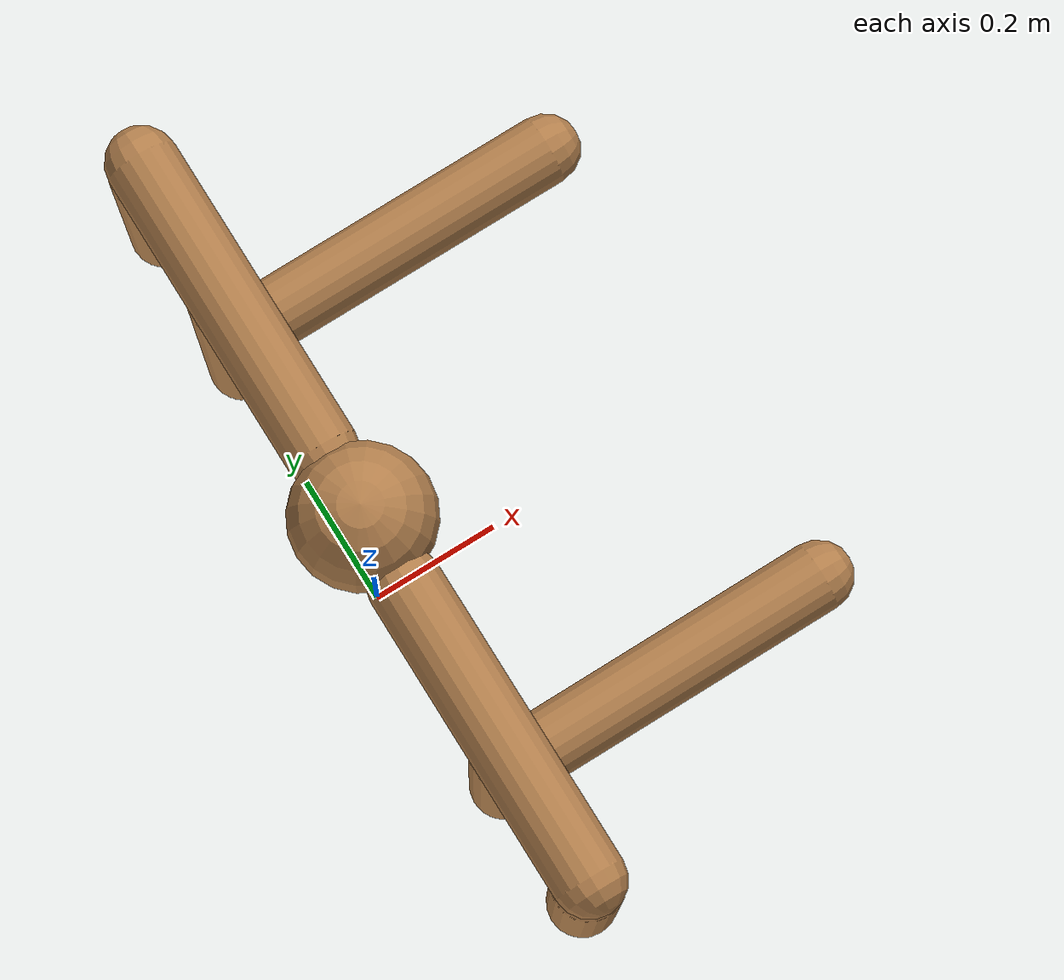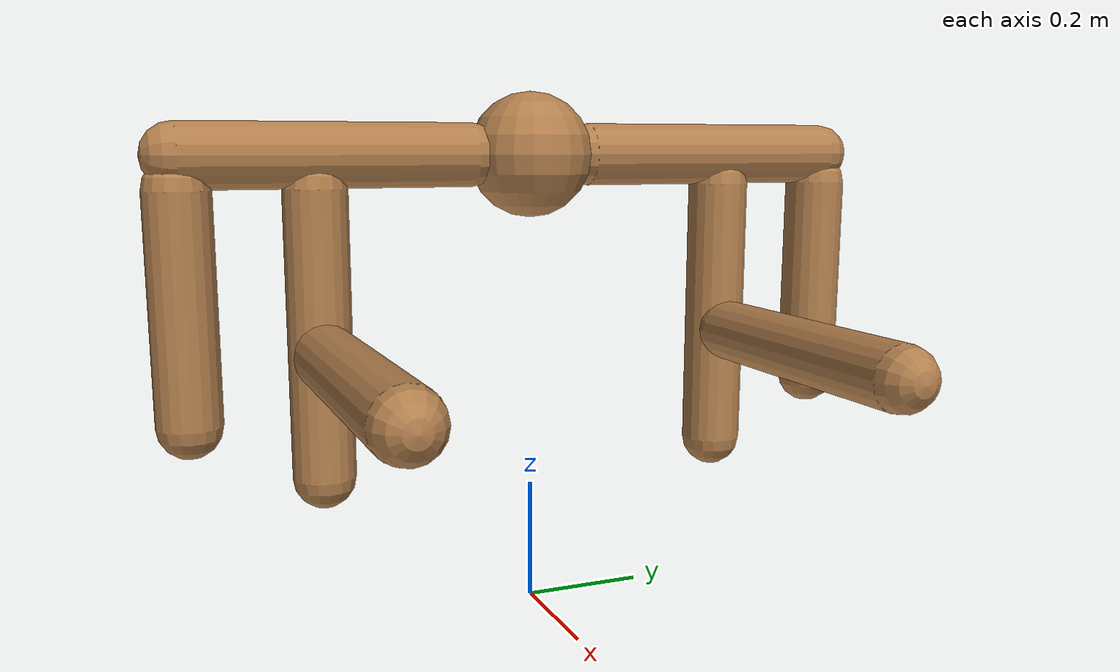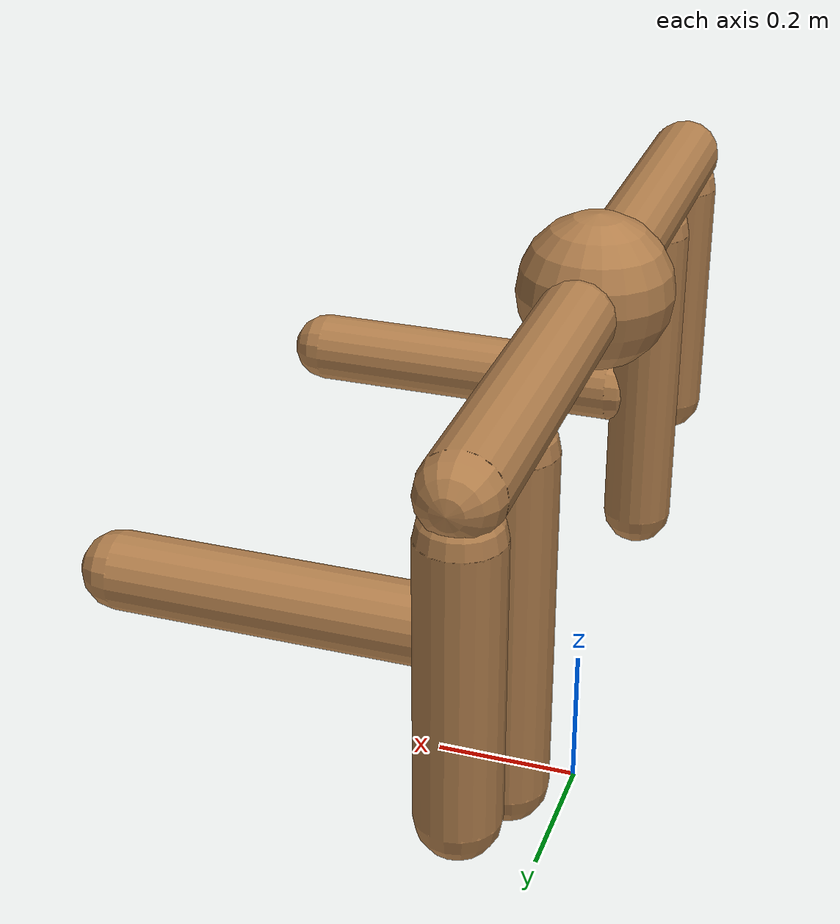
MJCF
<?xml version='1.0' encoding='UTF-8'?>
<!-- Universal Animal Template: unimal -->
<mujoco model="unimal">
  <compiler angle="degree"/>
  <size njmax="2000" nconmax="500"/>
  <option timestep=".005">
    <flag filterparent="disable"/>
  </option>
  <!-- Common defaults to make search space tractable -->
  <default>
    <!-- Define motor defaults -->
    <motor ctrlrange="-1 1" ctrllimited="true"/>
    <!-- Define joint defaults -->
    <default class="normal_joint">
      <joint type="hinge" damping="1" stiffness="1" armature="1" limited="true" range="-120 120" solimplimit="0 0.99 0.01"/>
    </default>
    <default class="walker_joint">
      <joint type="hinge" damping="0.2" stiffness="1" armature=".01" limited="true" range="-120 120" solimplimit="0 0.99 0.01"/>
    </default>
    <default class="stiff_joint">
      <joint type="hinge" damping="5" stiffness="10" armature=".01" limited="true" solimplimit="0 0.99 0.01"/>
    </default>
    <default class="free">
      <joint limited="false" damping="0" armature="0" stiffness="0"/>
    </default>
    <default class="growth_site">
      <site size="1e-6 1e-6 1e-6"/>
    </default>
    <default class="torso_growth_site">
      <site size="1e-6 1e-6 1e-6"/>
    </default>
    <default class="mirror_growth_site">
      <site size="1e-6 1e-6 1e-6"/>
    </default>
    <default class="btm_pos_site">
      <site size="1e-6 1e-6 1e-6"/>
    </default>
    <default class="box_face_site">
      <site size="1e-6 1e-6 1e-6"/>
    </default>
    <default class="imu_vel">
      <site type="box" size="0.05" rgba="1 0 0 0"/>
    </default>
    <default class="touch_site">
      <site group="3" rgba="0 0 1 .3"/>
    </default>
    <default class="food_site">
      <site material="food" size="0.15"/>
    </default>
    <!-- Define geom defaults -->
    <geom type="capsule" condim="3" friction="0.7 0.1 0.1" material="self"/>
  </default>
  <worldbody>
    <light diffuse="1 1 1" directional="true" exponent="1" pos="0 0 8" specular="0.1 0.1 0.1" dir="0 0 -1"/>
    <!-- Programatically generated xml goes here -->
    <body name="torso/0" pos="0 0 0.75">
      <joint name="root" type="free" class="free"/>
      <site name="root" class="imu_vel"/>
      <geom name="torso/0" type="sphere" size="0.1" condim="3" density="600"/>
      <camera name="side" pos="0 -7 2" xyaxes="1 0 0 0 1 2" mode="trackcom"/>
      <site name="torso/0" class="growth_site" pos="0 0 0"/>
      <site name="torso/btm_pos/0" class="btm_pos_site" pos="0 0 -0.1"/>
      <site name="torso/touch/0" class="touch_site" size="0.11"/>
      <site name="torso/horizontal_y/0" class="torso_growth_site" pos="-0.1 0 0"/>
      <body name="limb/3" pos="0.0 0.1 0.0">
        <joint name="limbx/3" type="hinge" class="normal_joint" range="-60 0" pos="0.0 -0.05 0.0" axis="1.0 0.0 0.0"/>
        <geom name="limb/3" type="capsule" fromto="0.0 0.0 0.0 0.0 0.45 0.0" size="0.05" density="500"/>
        <site name="limb/mid/3" class="mirror_growth_site" pos="0.0 0.25 0.0"/>
        <site name="limb/btm/3" class="mirror_growth_site" pos="0.0 0.45 0.0"/>
        <site name="limb/btm_pos/3" class="btm_pos_site" pos="0.0 0.45 0.0"/>
        <site name="limb/touch/3" class="touch_site" size="0.060000000000000005" fromto="0.0 0.0 0.0 0.0 0.45 0.0" type="capsule"/>
        <body name="limb/24" pos="0.0 0.45 -0.05">
          <joint name="limby/24" type="hinge" class="normal_joint" range="0 30" pos="0.0 0.0 0.05" axis="0.0 1.0 0.0"/>
          <geom name="limb/24" type="capsule" fromto="0.0 0.0 0.0 0.0 0.0 -0.35" size="0.05" density="500"/>
          <site name="limb/mid/24" class="mirror_growth_site" pos="0.0 0.0 -0.2"/>
          <site name="limb/btm/24" class="mirror_growth_site" pos="0.0 0.0 -0.35"/>
          <site name="limb/btm_pos/24" class="btm_pos_site" pos="0.0 0.0 -0.4"/>
          <site name="limb/touch/24" class="touch_site" size="0.060000000000000005" fromto="0.0 0.0 0.0 0.0 0.0 -0.35" type="capsule"/>
        </body>
        <body name="limb/26" pos="0.0 0.25 -0.05">
          <joint name="limbx/26" type="hinge" class="normal_joint" range="-45 0" pos="0.0 0.0 0.05" axis="1.0 0.0 0.0"/>
          <geom name="limb/26" type="capsule" fromto="0.0 0.0 0.0 0.0 0.0 -0.45" size="0.05" density="500"/>
          <site name="limb/mid/26" class="mirror_growth_site" pos="0.0 0.0 -0.25"/>
          <site name="limb/btm/26" class="mirror_growth_site" pos="0.0 0.0 -0.45"/>
          <site name="limb/btm_pos/26" class="btm_pos_site" pos="0.0 0.0 -0.5"/>
          <site name="limb/touch/26" class="touch_site" size="0.060000000000000005" fromto="0.0 0.0 0.0 0.0 0.0 -0.45" type="capsule"/>
          <body name="limb/28" pos="0.05 0.0 -0.25">
            <joint name="limby/28" type="hinge" class="normal_joint" range="-60 0" pos="-0.05 0.0 0.0" axis="-0.0 1.0 0.0"/>
            <geom name="limb/28" type="capsule" fromto="0.0 0.0 0.0 0.45 0.0 0.0" size="0.05" density="500"/>
            <site name="limb/mid/28" class="mirror_growth_site" pos="0.25 0.0 0.0"/>
            <site name="limb/btm/28" class="mirror_growth_site" pos="0.45 0.0 0.0"/>
            <site name="limb/btm_pos/28" class="btm_pos_site" pos="0.5 0.0 0.0"/>
            <site name="limb/touch/28" class="touch_site" size="0.060000000000000005" fromto="0.0 0.0 0.0 0.45 0.0 0.0" type="capsule"/>
          </body>
        </body>
      </body>
      <body name="limb/4" pos="0.0 -0.1 0.0">
        <joint name="limbx/4" type="hinge" class="normal_joint" range="-60 0" pos="0.0 0.05 0.0" axis="1.0 0.0 -0.0"/>
        <geom name="limb/4" type="capsule" fromto="0.0 0.0 0.0 0.0 -0.45 0.0" size="0.05" density="500"/>
        <site name="limb/mid/4" class="mirror_growth_site" pos="0.0 -0.25 0.0"/>
        <site name="limb/btm/4" class="mirror_growth_site" pos="0.0 -0.45 0.0"/>
        <site name="limb/btm_pos/4" class="btm_pos_site" pos="0.0 -0.45 0.0"/>
        <site name="limb/touch/4" class="touch_site" size="0.060000000000000005" fromto="0.0 0.0 0.0 0.0 -0.45 0.0" type="capsule"/>
        <body name="limb/25" pos="0.0 -0.45 -0.05">
          <joint name="limby/25" type="hinge" class="normal_joint" range="0 30" pos="0.0 0.0 0.05" axis="0.0 1.0 0.0"/>
          <geom name="limb/25" type="capsule" fromto="0.0 0.0 0.0 0.0 0.0 -0.35" size="0.05" density="500"/>
          <site name="limb/mid/25" class="mirror_growth_site" pos="0.0 0.0 -0.2"/>
          <site name="limb/btm/25" class="mirror_growth_site" pos="0.0 0.0 -0.35"/>
          <site name="limb/btm_pos/25" class="btm_pos_site" pos="0.0 0.0 -0.4"/>
          <site name="limb/touch/25" class="touch_site" size="0.060000000000000005" fromto="0.0 0.0 0.0 0.0 0.0 -0.35" type="capsule"/>
        </body>
        <body name="limb/27" pos="0.0 -0.25 -0.05">
          <joint name="limbx/27" type="hinge" class="normal_joint" range="-45 0" pos="0.0 0.0 0.05" axis="1.0 0.0 0.0"/>
          <geom name="limb/27" type="capsule" fromto="0.0 0.0 0.0 0.0 0.0 -0.45" size="0.05" density="500"/>
          <site name="limb/mid/27" class="mirror_growth_site" pos="0.0 0.0 -0.25"/>
          <site name="limb/btm/27" class="mirror_growth_site" pos="0.0 0.0 -0.45"/>
          <site name="limb/btm_pos/27" class="btm_pos_site" pos="0.0 0.0 -0.5"/>
          <site name="limb/touch/27" class="touch_site" size="0.060000000000000005" fromto="0.0 0.0 0.0 0.0 0.0 -0.45" type="capsule"/>
          <body name="limb/29" pos="0.05 0.0 -0.25">
            <joint name="limby/29" type="hinge" class="normal_joint" range="-60 0" pos="-0.05 0.0 0.0" axis="-0.0 1.0 0.0"/>
            <geom name="limb/29" type="capsule" fromto="0.0 0.0 0.0 0.45 0.0 0.0" size="0.05" density="500"/>
            <site name="limb/mid/29" class="mirror_growth_site" pos="0.25 0.0 0.0"/>
            <site name="limb/btm/29" class="mirror_growth_site" pos="0.45 0.0 0.0"/>
            <site name="limb/btm_pos/29" class="btm_pos_site" pos="0.5 0.0 0.0"/>
            <site name="limb/touch/29" class="touch_site" size="0.060000000000000005" fromto="0.0 0.0 0.0 0.45 0.0 0.0" type="capsule"/>
          </body>
        </body>
      </body>
    </body>
  </worldbody>
  <actuator>
    <motor joint="limbx/3" gear="200" name="limbx/3"/>
    <motor joint="limby/24" gear="150" name="limby/24"/>
    <motor joint="limbx/26" gear="250" name="limbx/26"/>
    <motor joint="limby/28" gear="150" name="limby/28"/>
    <motor joint="limbx/4" gear="200" name="limbx/4"/>
    <motor joint="limby/25" gear="150" name="limby/25"/>
    <motor joint="limbx/27" gear="250" name="limbx/27"/>
    <motor joint="limby/29" gear="150" name="limby/29"/>
  </actuator>
  <sensor>
    <accelerometer name="torso_accel" site="root"/>
    <gyro name="torso_gyro" site="root"/>
    <velocimeter name="torso_vel" site="root"/>
    <subtreeangmom name="unimal_am" body="torso/0"/>
    <touch name="torso/0" site="torso/touch/0"/>
    <touch name="limb/3" site="limb/touch/3"/>
    <touch name="limb/24" site="limb/touch/24"/>
    <touch name="limb/26" site="limb/touch/26"/>
    <touch name="limb/28" site="limb/touch/28"/>
    <touch name="limb/4" site="limb/touch/4"/>
    <touch name="limb/25" site="limb/touch/25"/>
    <touch name="limb/27" site="limb/touch/27"/>
    <touch name="limb/29" site="limb/touch/29"/>
  </sensor>
  <!-- Add hfield assets -->
  <asset/>
  <!-- List of contacts to exclude -->
  <contact/>
  <!-- Define material, texture etc -->
  <asset>
    <material name="grid" texture="grid" texrepeat="1 1" texuniform="true" reflectance="0.1"/>
    <material name="hfield" texture="hfield" texrepeat="1 1" texuniform="true" reflectance="0.1"/>
    <material name="wall" texture="wall" texrepeat="1 1" texuniform="true" reflectance=".5"/>
    <material name="platform" texture="platform" texrepeat="1 1" texuniform="true" reflectance=".5"/>
    <material name="boundary" texture="boundary" texrepeat="1 1" texuniform="true" reflectance=".5"/>
    <material name="jump" texture="jump" texrepeat="1 1" texuniform="true" reflectance=".5"/>
    <material name="goal" rgba="1 0 0 1"/>
    <material name="food" rgba="0 0 1 1" emission="1"/>
    <material name="init_position" rgba="0 1 0 0.7"/>
    <material name="self" rgba=".7 .5 .3 1"/>
    <material name="self_invisible" rgba=".7 .5 .3 0"/>
    <material name="self_default" rgba=".7 .5 .3 1"/>
    <material name="self_highlight" rgba="0 .5 .3 1"/>
    <material name="effector" rgba=".7 .4 .2 1"/>
    <material name="effector_default" rgba=".7 .4 .2 1"/>
    <material name="effector_highlight" rgba="0 .5 .3 1"/>
    <material name="decoration" rgba=".3 .5 .7 1"/>
    <material name="eye" rgba="0 .2 1 1"/>
    <material name="target" rgba=".6 .3 .3 1"/>
    <material name="target_default" rgba=".6 .3 .3 1"/>
    <material name="target_highlight" rgba=".6 .3 .3 .4"/>
    <material name="site" rgba=".5 .5 .5 .3"/>
    <material name="ball" texture="ball"/>
  </asset>
  <asset>
    <texture name="grid" type="2d" builtin="checker" rgb1="0.4 0.4 0.4" rgb2="0.4 0.4 0.4" width="300" height="300" mark="edge" markrgb="0.2 0.2 0.2"/>
    <texture name="hfield" type="2d" builtin="checker" rgb1="0.4 0.4 0.4" rgb2="0.4 0.4 0.4" width="300" height="300" mark="edge" markrgb="0.2 0.2 0.2"/>
    <texture name="wall" type="2d" builtin="flat" rgb1="0.9 0.7 0" rgb2="0.9 0.7 0" width="300" height="300"/>
    <texture name="platform" type="2d" builtin="flat" rgb1="0.3 0 0.8" rgb2="0.3 0 0.8" width="300" height="300"/>
    <texture name="boundary" type="2d" builtin="flat" rgb1="0.3 0.3 0.3" rgb2="0.3 0.3 0.3" width="300" height="300"/>
    <texture name="jump" type="2d" builtin="flat" rgb1="0.3 0.3 0.3" rgb2="0.3 0.3 0.3" width="300" height="300"/>
    <texture name="skybox" type="skybox" builtin="gradient" rgb1="1 1 1" rgb2="0.6 0.6 0.6" width="800" height="800"/>
    <texture name="ball" builtin="checker" mark="cross" width="151" height="151" rgb1="0.1 0.1 0.1" rgb2="0.9 0.9 0.9" markrgb="1 1 1"/>
  </asset>
  <visual>
    <headlight ambient="0.6 0.6 0.6" diffuse="0.3 0.3 0.3" specular="0 0 0"/>
    <map znear=".01" shadowclip="0.5"/>
    <quality shadowsize="16384"/>
  </visual>
</mujoco>
